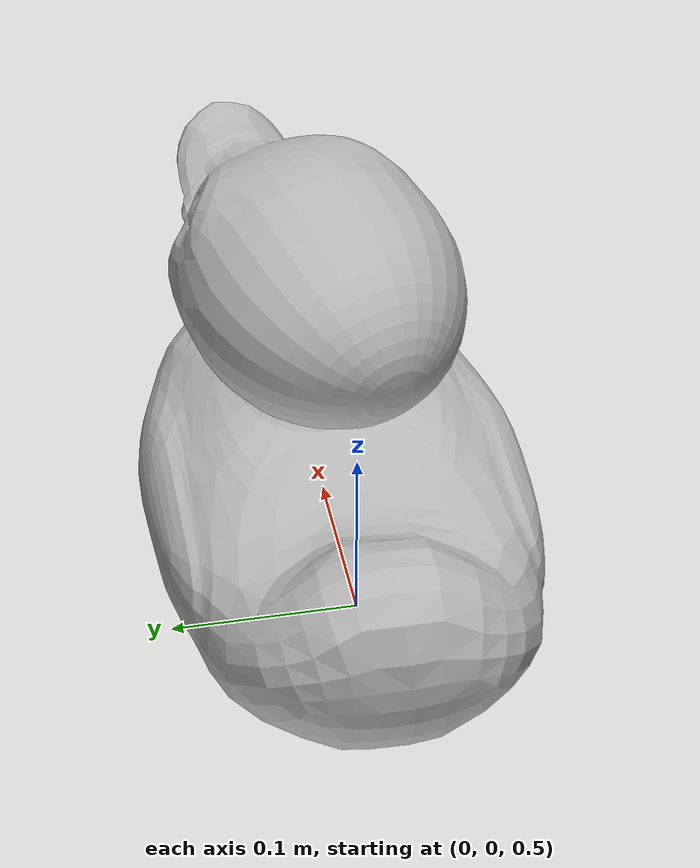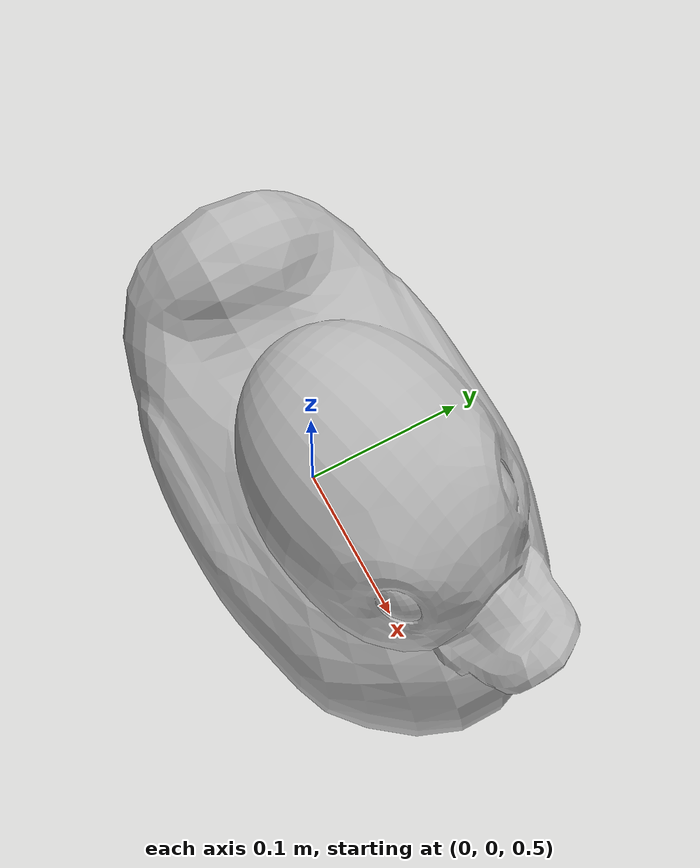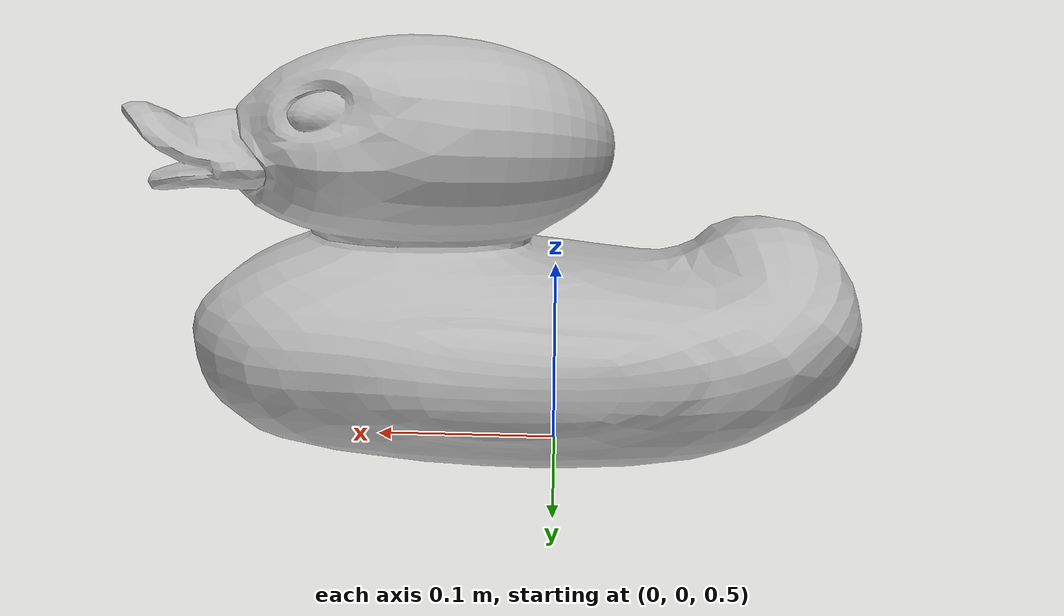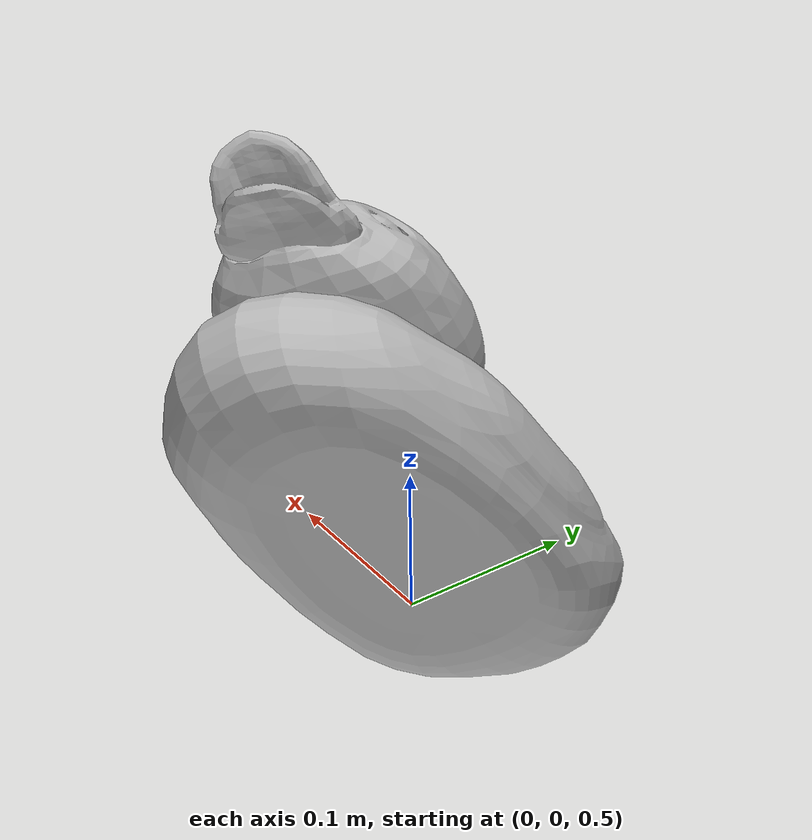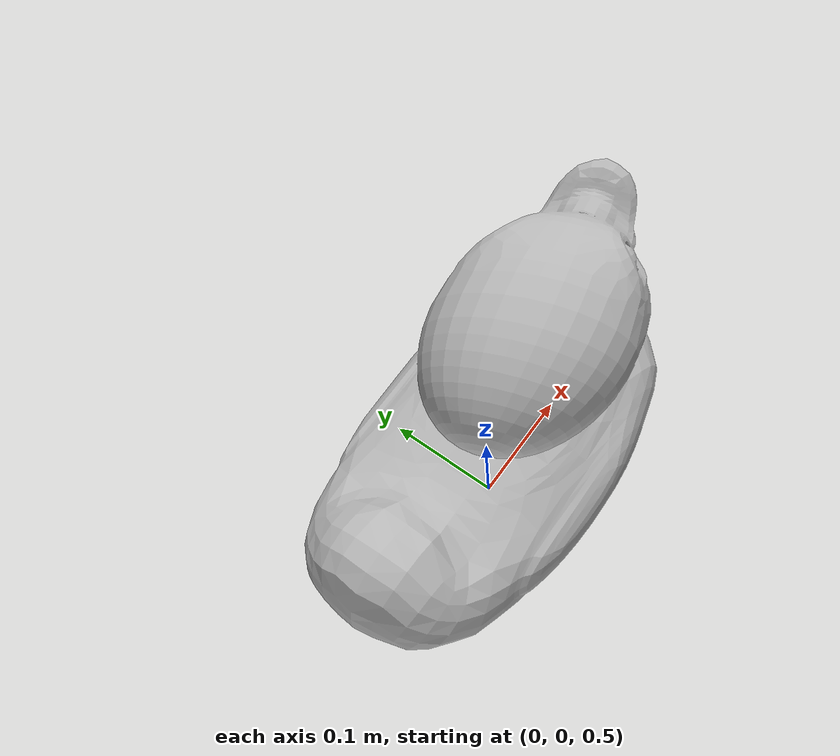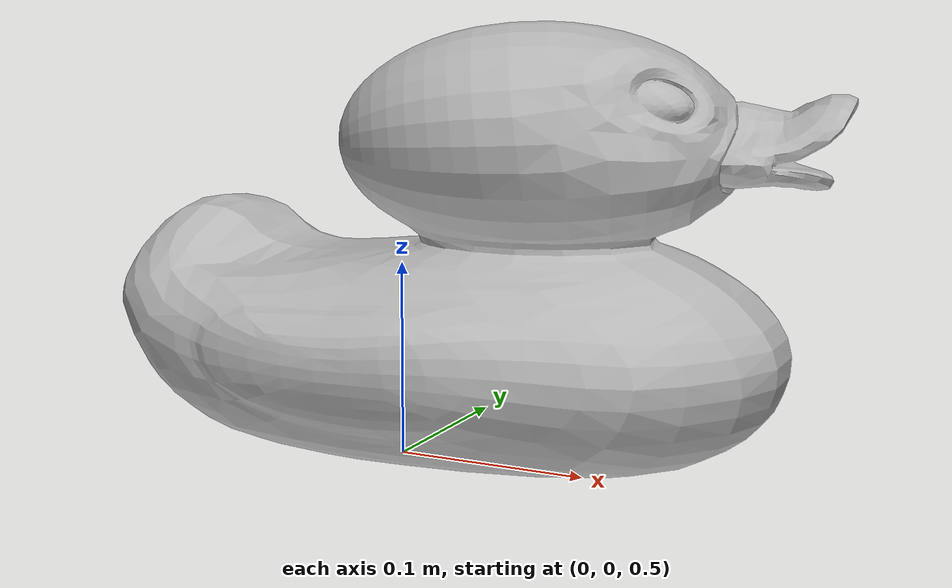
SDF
<?xml version="1.0" ?>
<sdf version="1.5">
  <model name="duck">
    <link name="base_link">
      <pose>0 0 0.5 0 0 0</pose>
      <inertial>
        <mass>10.0</mass>
        <origin xyz="0 0 0" rpy="0 0 0"/>
        <inertia ixx="0.345" ixy="0" ixz="0"
                 iyy="0.345" iyz="0"
                 izz="0.345" />
      </inertial>
      <collision name="collision">
        <geometry>
          <mesh>
            <uri>model://duck/meshes/duck.dae</uri>
            <scale>0.5 0.5 0.5</scale>
          </mesh>
        </geometry>
      </collision>
      <visual name="visual">
        <geometry>
          <mesh>
            <uri>model://duck/meshes/duck.dae</uri>
            <scale>0.5 0.5 0.5</scale>
          </mesh>
        </geometry>
      </visual>
    </link>
    <plugin name="hydro_uuv_plugin" filename="libunderwater_object_ros_plugin.so">
      <fluid_density>1025.0</fluid_density>
      <flow_velocity_topic>hydrodynamics/current_velocity</flow_velocity_topic>
      <debug>1</debug>
      <link name="base_link">
        <volume>0.015625</volume>
        <neutrally_buoyant>0</neutrally_buoyant>
        <center_of_buoyancy>0 0 0</center_of_buoyancy>
        <box>
          <width>0.25</width>
          <length>0.25</length>
          <height>0.25</height>
        </box>
        <hydrodynamic_model>
          <type>fossen</type>
          <added_mass>
            0.93 0 0 0 0 0
            0 35.5 0 0 0 -1.93
            0 0 35.5 0 1.93 0
            0 0 0 0.0704 0 0
            0 0 1.93 0 4.88 0
            0 -1.93 0 0 0 4.88
          </added_mass>
          <linear_damping>-5.8596 -38.2014808 -38.2014808 0 -4.09 -4.09</linear_damping>
          <quadratic_damping>-1.62 -1310 -1310 -0.13 -188 -188</quadratic_damping>
        </hydrodynamic_model>
      </link>
    </plugin>
  </model>
</sdf>
